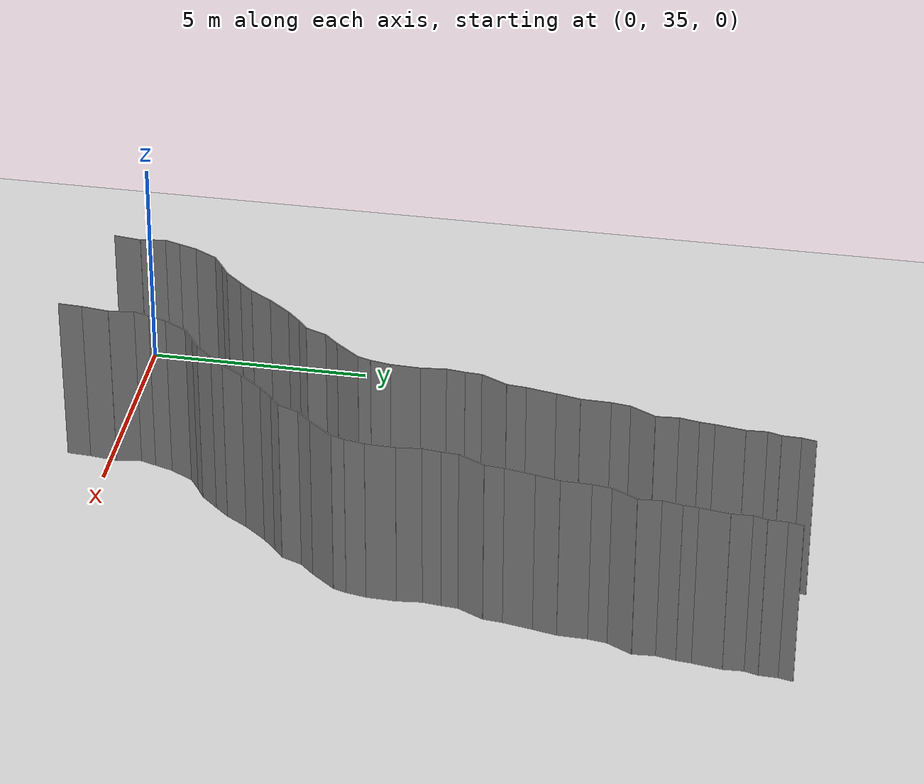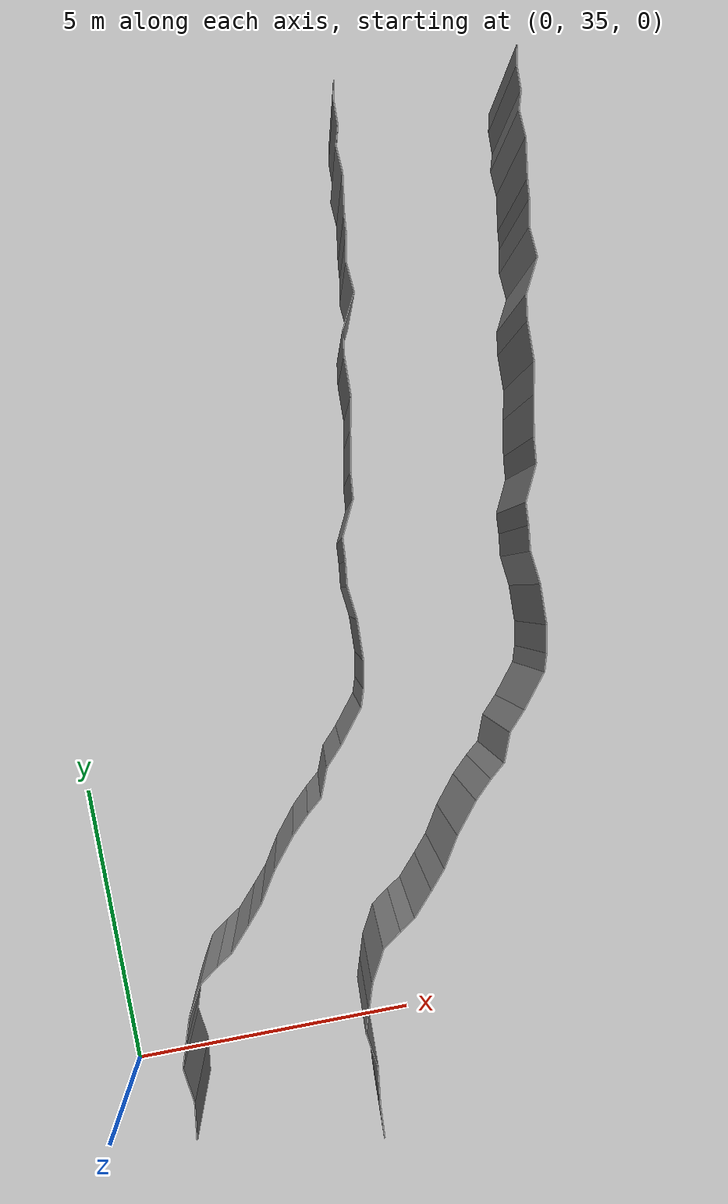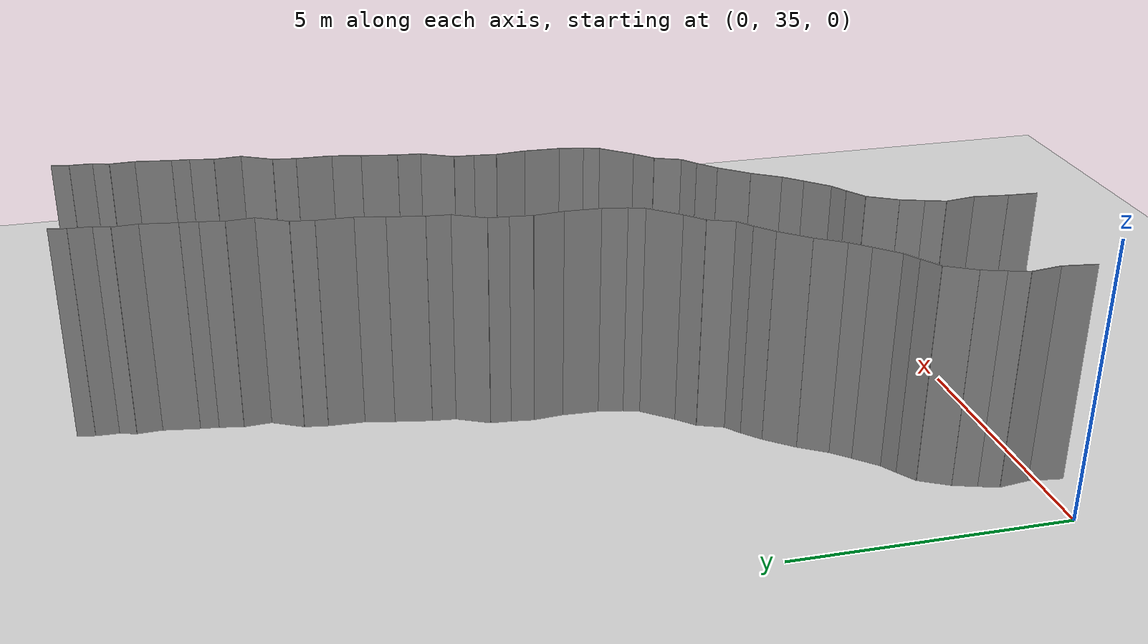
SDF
<sdf version="1.6">
 <world name="default">
  <model name="ground_plane">
   <static>1</static>
   <link name="link">
    <collision name="collision">
     <geometry><plane><normal>0 0 1</normal><size>200 200</size></plane></geometry>
     <surface><friction><ode><mu>100</mu><mu2>50</mu2></ode></friction></surface>
    </collision>
    <visual name="visual">
     <cast_shadows>0</cast_shadows>
     <geometry><plane><normal>0 0 1</normal><size>200 200</size></plane></geometry>
     <material>
      <script><uri>file://media/materials/scripts/gazebo.material</uri><name>Gazebo/Grey</name></script>
     </material>
    </visual>
   </link>
   <pose>0 100 0 0 -0 0</pose>
  </model>
  <model name="wall_149">
   <static>1</static>
   <pose>4.210010592671174 34.243823637815694 2 0 0 -0.05738775027221445</pose>
   <link name="link">
    <collision name="collision"><geometry><box><size>0.02 0.537035599151 4</size></box></geometry></collision>
    <visual name="visual">
     <material>
      <script><name>Gazebo/Grey</name><uri>file://media/materials/scripts/gazebo.material</uri></script>
     </material>
     <geometry><box><size>0.02 0.537035599151 4</size></box></geometry>
    </visual>
   </link>
  </model>
  <model name="wall_150">
   <static>1</static>
   <pose>1.2641803655082342 34.81992617237092 2 0 0 -0.125202783735299</pose>
   <link name="link">
    <collision name="collision"><geometry><box><size>0.02 0.620913838429 4</size></box></geometry></collision>
    <visual name="visual">
     <material>
      <script><name>Gazebo/Grey</name><uri>file://media/materials/scripts/gazebo.material</uri></script>
     </material>
     <geometry><box><size>0.02 0.620913838429 4</size></box></geometry>
    </visual>
   </link>
  </model>
  <model name="wall_151">
   <static>1</static>
   <pose>4.264180365508234 34.81992617237092 2 0 0 -0.125202783735299</pose>
   <link name="link">
    <collision name="collision"><geometry><box><size>0.02 0.620913838429 4</size></box></geometry></collision>
    <visual name="visual">
     <material>
      <script><name>Gazebo/Grey</name><uri>file://media/materials/scripts/gazebo.material</uri></script>
     </material>
     <geometry><box><size>0.02 0.620913838429 4</size></box></geometry>
    </visual>
   </link>
  </model>
  <model name="wall_152">
   <static>1</static>
   <pose>1.262635751878512 35.40809303495665 2 0 0 0.14292258545209252</pose>
   <link name="link">
    <collision name="collision"><geometry><box><size>0.02 0.566051669885 4</size></box></geometry></collision>
    <visual name="visual">
     <material>
      <script><name>Gazebo/Grey</name><uri>file://media/materials/scripts/gazebo.material</uri></script>
     </material>
     <geometry><box><size>0.02 0.566051669885 4</size></box></geometry>
    </visual>
   </link>
  </model>
  <model name="wall_153">
   <static>1</static>
   <pose>4.262635751878512 35.40809303495665 2 0 0 0.14292258545209252</pose>
   <link name="link">
    <collision name="collision"><geometry><box><size>0.02 0.566051669885 4</size></box></geometry></collision>
    <visual name="visual">
     <material>
      <script><name>Gazebo/Grey</name><uri>file://media/materials/scripts/gazebo.material</uri></script>
     </material>
     <geometry><box><size>0.02 0.566051669885 4</size></box></geometry>
    </visual>
   </link>
  </model>
  <model name="wall_154">
   <static>1</static>
   <pose>1.2789226562118792 35.86484187803689 2 0 0 -0.31014107555907894</pose>
   <link name="link">
    <collision name="collision"><geometry><box><size>0.02 0.370913606171 4</size></box></geometry></collision>
    <visual name="visual">
     <material>
      <script><name>Gazebo/Grey</name><uri>file://media/materials/scripts/gazebo.material</uri></script>
     </material>
     <geometry><box><size>0.02 0.370913606171 4</size></box></geometry>
    </visual>
   </link>
  </model>
  <model name="wall_155">
   <static>1</static>
   <pose>4.278922656211879 35.86484187803689 2 0 0 -0.31014107555907894</pose>
   <link name="link">
    <collision name="collision"><geometry><box><size>0.02 0.370913606171 4</size></box></geometry></collision>
    <visual name="visual">
     <material>
      <script><name>Gazebo/Grey</name><uri>file://media/materials/scripts/gazebo.material</uri></script>
     </material>
     <geometry><box><size>0.02 0.370913606171 4</size></box></geometry>
    </visual>
   </link>
  </model>
  <model name="wall_156">
   <static>1</static>
   <pose>1.4024727514980206 36.24623829428925 2 0 0 -0.31597101370831854</pose>
   <link name="link">
    <collision name="collision"><geometry><box><size>0.02 0.430907347532 4</size></box></geometry></collision>
    <visual name="visual">
     <material>
      <script><name>Gazebo/Grey</name><uri>file://media/materials/scripts/gazebo.material</uri></script>
     </material>
     <geometry><box><size>0.02 0.430907347532 4</size></box></geometry>
    </visual>
   </link>
  </model>
  <model name="wall_157">
   <static>1</static>
   <pose>4.402472751498021 36.24623829428925 2 0 0 -0.31597101370831854</pose>
   <link name="link">
    <collision name="collision"><geometry><box><size>0.02 0.430907347532 4</size></box></geometry></collision>
    <visual name="visual">
     <material>
      <script><name>Gazebo/Grey</name><uri>file://media/materials/scripts/gazebo.material</uri></script>
     </material>
     <geometry><box><size>0.02 0.430907347532 4</size></box></geometry>
    </visual>
   </link>
  </model>
  <model name="wall_158">
   <static>1</static>
   <pose>1.6104215736124274 36.70595975618467 2 0 0 -0.5052049833250031</pose>
   <link name="link">
    <collision name="collision"><geometry><box><size>0.02 0.582655702046 4</size></box></geometry></collision>
    <visual name="visual">
     <material>
      <script><name>Gazebo/Grey</name><uri>file://media/materials/scripts/gazebo.material</uri></script>
     </material>
     <geometry><box><size>0.02 0.582655702046 4</size></box></geometry>
    </visual>
   </link>
  </model>
  <model name="wall_159">
   <static>1</static>
   <pose>4.610421573612427 36.70595975618467 2 0 0 -0.5052049833250031</pose>
   <link name="link">
    <collision name="collision"><geometry><box><size>0.02 0.582655702046 4</size></box></geometry></collision>
    <visual name="visual">
     <material>
      <script><name>Gazebo/Grey</name><uri>file://media/materials/scripts/gazebo.material</uri></script>
     </material>
     <geometry><box><size>0.02 0.582655702046 4</size></box></geometry>
    </visual>
   </link>
  </model>
  <model name="wall_160">
   <static>1</static>
   <pose>1.9120183267116684 37.073487573500074 2 0 0 -0.9593374148922097</pose>
   <link name="link">
    <collision name="collision"><geometry><box><size>0.02 0.392270831726 4</size></box></geometry></collision>
    <visual name="visual">
     <material>
      <script><name>Gazebo/Grey</name><uri>file://media/materials/scripts/gazebo.material</uri></script>
     </material>
     <geometry><box><size>0.02 0.392270831726 4</size></box></geometry>
    </visual>
   </link>
  </model>
  <model name="wall_161">
   <static>1</static>
   <pose>4.912018326711668 37.073487573500074 2 0 0 -0.9593374148922097</pose>
   <link name="link">
    <collision name="collision"><geometry><box><size>0.02 0.392270831726 4</size></box></geometry></collision>
    <visual name="visual">
     <material>
      <script><name>Gazebo/Grey</name><uri>file://media/materials/scripts/gazebo.material</uri></script>
     </material>
     <geometry><box><size>0.02 0.392270831726 4</size></box></geometry>
    </visual>
   </link>
  </model>
  <model name="wall_162">
   <static>1</static>
   <pose>2.204729493821966 37.27112759484912 2 0 0 -0.9988375169682683</pose>
   <link name="link">
    <collision name="collision"><geometry><box><size>0.02 0.314240261843 4</size></box></geometry></collision>
    <visual name="visual">
     <material>
      <script><name>Gazebo/Grey</name><uri>file://media/materials/scripts/gazebo.material</uri></script>
     </material>
     <geometry><box><size>0.02 0.314240261843 4</size></box></geometry>
    </visual>
   </link>
  </model>
  <model name="wall_163">
   <static>1</static>
   <pose>5.204729493821966 37.27112759484912 2 0 0 -0.9988375169682683</pose>
   <link name="link">
    <collision name="collision"><geometry><box><size>0.02 0.314240261843 4</size></box></geometry></collision>
    <visual name="visual">
     <material>
      <script><name>Gazebo/Grey</name><uri>file://media/materials/scripts/gazebo.material</uri></script>
     </material>
     <geometry><box><size>0.02 0.314240261843 4</size></box></geometry>
    </visual>
   </link>
  </model>
  <model name="wall_164">
   <static>1</static>
   <pose>2.51212049027761 37.54817160489226 2 0 0 -0.7399044785112537</pose>
   <link name="link">
    <collision name="collision"><geometry><box><size>0.02 0.51994430426 4</size></box></geometry></collision>
    <visual name="visual">
     <material>
      <script><name>Gazebo/Grey</name><uri>file://media/materials/scripts/gazebo.material</uri></script>
     </material>
     <geometry><box><size>0.02 0.51994430426 4</size></box></geometry>
    </visual>
   </link>
  </model>
  <model name="wall_165">
   <static>1</static>
   <pose>5.51212049027761 37.54817160489226 2 0 0 -0.7399044785112537</pose>
   <link name="link">
    <collision name="collision"><geometry><box><size>0.02 0.51994430426 4</size></box></geometry></collision>
    <visual name="visual">
     <material>
      <script><name>Gazebo/Grey</name><uri>file://media/materials/scripts/gazebo.material</uri></script>
     </material>
     <geometry><box><size>0.02 0.51994430426 4</size></box></geometry>
    </visual>
   </link>
  </model>
  <model name="wall_166">
   <static>1</static>
   <pose>2.8228977576963756 37.89475701840699 2 0 0 -0.7196923250993555</pose>
   <link name="link">
    <collision name="collision"><geometry><box><size>0.02 0.411132041815 4</size></box></geometry></collision>
    <visual name="visual">
     <material>
      <script><name>Gazebo/Grey</name><uri>file://media/materials/scripts/gazebo.material</uri></script>
     </material>
     <geometry><box><size>0.02 0.411132041815 4</size></box></geometry>
    </visual>
   </link>
  </model>
  <model name="wall_167">
   <static>1</static>
   <pose>5.822897757696376 37.89475701840699 2 0 0 -0.7196923250993555</pose>
   <link name="link">
    <collision name="collision"><geometry><box><size>0.02 0.411132041815 4</size></box></geometry></collision>
    <visual name="visual">
     <material>
      <script><name>Gazebo/Grey</name><uri>file://media/materials/scripts/gazebo.material</uri></script>
     </material>
     <geometry><box><size>0.02 0.411132041815 4</size></box></geometry>
    </visual>
   </link>
  </model>
  <model name="wall_168">
   <static>1</static>
   <pose>3.1119555091482707 38.2916032382538 2 0 0 -0.5649453577636544</pose>
   <link name="link">
    <collision name="collision"><geometry><box><size>0.02 0.57365306433 4</size></box></geometry></collision>
    <visual name="visual">
     <material>
      <script><name>Gazebo/Grey</name><uri>file://media/materials/scripts/gazebo.material</uri></script>
     </material>
     <geometry><box><size>0.02 0.57365306433 4</size></box></geometry>
    </visual>
   </link>
  </model>
  <model name="wall_169">
   <static>1</static>
   <pose>6.11195550914827 38.2916032382538 2 0 0 -0.5649453577636544</pose>
   <link name="link">
    <collision name="collision"><geometry><box><size>0.02 0.57365306433 4</size></box></geometry></collision>
    <visual name="visual">
     <material>
      <script><name>Gazebo/Grey</name><uri>file://media/materials/scripts/gazebo.material</uri></script>
     </material>
     <geometry><box><size>0.02 0.57365306433 4</size></box></geometry>
    </visual>
   </link>
  </model>
  <model name="wall_170">
   <static>1</static>
   <pose>3.465662119648328 38.78051253246411 2 0 0 -0.6816931735520027</pose>
   <link name="link">
    <collision name="collision"><geometry><box><size>0.02 0.635282102885 4</size></box></geometry></collision>
    <visual name="visual">
     <material>
      <script><name>Gazebo/Grey</name><uri>file://media/materials/scripts/gazebo.material</uri></script>
     </material>
     <geometry><box><size>0.02 0.635282102885 4</size></box></geometry>
    </visual>
   </link>
  </model>
  <model name="wall_171">
   <static>1</static>
   <pose>6.465662119648329 38.78051253246411 2 0 0 -0.6816931735520027</pose>
   <link name="link">
    <collision name="collision"><geometry><box><size>0.02 0.635282102885 4</size></box></geometry></collision>
    <visual name="visual">
     <material>
      <script><name>Gazebo/Grey</name><uri>file://media/materials/scripts/gazebo.material</uri></script>
     </material>
     <geometry><box><size>0.02 0.635282102885 4</size></box></geometry>
    </visual>
   </link>
  </model>
  <model name="wall_172">
   <static>1</static>
   <pose>3.8171336752096607 39.17467314858112 2 0 0 -0.7981572172326835</pose>
   <link name="link">
    <collision name="collision"><geometry><box><size>0.02 0.422648510173 4</size></box></geometry></collision>
    <visual name="visual">
     <material>
      <script><name>Gazebo/Grey</name><uri>file://media/materials/scripts/gazebo.material</uri></script>
     </material>
     <geometry><box><size>0.02 0.422648510173 4</size></box></geometry>
    </visual>
   </link>
  </model>
  <model name="wall_173">
   <static>1</static>
   <pose>6.817133675209661 39.17467314858112 2 0 0 -0.7981572172326835</pose>
   <link name="link">
    <collision name="collision"><geometry><box><size>0.02 0.422648510173 4</size></box></geometry></collision>
    <visual name="visual">
     <material>
      <script><name>Gazebo/Grey</name><uri>file://media/materials/scripts/gazebo.material</uri></script>
     </material>
     <geometry><box><size>0.02 0.422648510173 4</size></box></geometry>
    </visual>
   </link>
  </model>
  <model name="wall_174">
   <static>1</static>
   <pose>4.096001254174671 39.42898334129415 2 0 0 -0.8736887844088234</pose>
   <link name="link">
    <collision name="collision"><geometry><box><size>0.02 0.3327090577 4</size></box></geometry></collision>
    <visual name="visual">
     <material>
      <script><name>Gazebo/Grey</name><uri>file://media/materials/scripts/gazebo.material</uri></script>
     </material>
     <geometry><box><size>0.02 0.3327090577 4</size></box></geometry>
    </visual>
   </link>
  </model>
  <model name="wall_175">
   <static>1</static>
   <pose>7.096001254174671 39.42898334129415 2 0 0 -0.8736887844088234</pose>
   <link name="link">
    <collision name="collision"><geometry><box><size>0.02 0.3327090577 4</size></box></geometry></collision>
    <visual name="visual">
     <material>
      <script><name>Gazebo/Grey</name><uri>file://media/materials/scripts/gazebo.material</uri></script>
     </material>
     <geometry><box><size>0.02 0.3327090577 4</size></box></geometry>
    </visual>
   </link>
  </model>
  <model name="wall_176">
   <static>1</static>
   <pose>4.317324484363362 39.76877882999274 2 0 0 -0.3826528966898051</pose>
   <link name="link">
    <collision name="collision"><geometry><box><size>0.02 0.502319965219 4</size></box></geometry></collision>
    <visual name="visual">
     <material>
      <script><name>Gazebo/Grey</name><uri>file://media/materials/scripts/gazebo.material</uri></script>
     </material>
     <geometry><box><size>0.02 0.502319965219 4</size></box></geometry>
    </visual>
   </link>
  </model>
  <model name="wall_177">
   <static>1</static>
   <pose>7.317324484363362 39.76877882999274 2 0 0 -0.3826528966898051</pose>
   <link name="link">
    <collision name="collision"><geometry><box><size>0.02 0.502319965219 4</size></box></geometry></collision>
    <visual name="visual">
     <material>
      <script><name>Gazebo/Grey</name><uri>file://media/materials/scripts/gazebo.material</uri></script>
     </material>
     <geometry><box><size>0.02 0.502319965219 4</size></box></geometry>
    </visual>
   </link>
  </model>
  <model name="wall_178">
   <static>1</static>
   <pose>4.557893353168188 40.15663964158261 2 0 0 -0.7586344917040667</pose>
   <link name="link">
    <collision name="collision"><geometry><box><size>0.02 0.426758035102 4</size></box></geometry></collision>
    <visual name="visual">
     <material>
      <script><name>Gazebo/Grey</name><uri>file://media/materials/scripts/gazebo.material</uri></script>
     </material>
     <geometry><box><size>0.02 0.426758035102 4</size></box></geometry>
    </visual>
   </link>
  </model>
  <model name="wall_179">
   <static>1</static>
   <pose>7.557893353168188 40.15663964158261 2 0 0 -0.7586344917040667</pose>
   <link name="link">
    <collision name="collision"><geometry><box><size>0.02 0.426758035102 4</size></box></geometry></collision>
    <visual name="visual">
     <material>
      <script><name>Gazebo/Grey</name><uri>file://media/materials/scripts/gazebo.material</uri></script>
     </material>
     <geometry><box><size>0.02 0.426758035102 4</size></box></geometry>
    </visual>
   </link>
  </model>
  <model name="wall_180">
   <static>1</static>
   <pose>4.919871681371253 40.58024884286381 2 0 0 -0.6751792005246824</pose>
   <link name="link">
    <collision name="collision"><geometry><box><size>0.02 0.688561502426 4</size></box></geometry></collision>
    <visual name="visual">
     <material>
      <script><name>Gazebo/Grey</name><uri>file://media/materials/scripts/gazebo.material</uri></script>
     </material>
     <geometry><box><size>0.02 0.688561502426 4</size></box></geometry>
    </visual>
   </link>
  </model>
  <model name="wall_181">
   <static>1</static>
   <pose>7.919871681371253 40.58024884286381 2 0 0 -0.6751792005246824</pose>
   <link name="link">
    <collision name="collision"><geometry><box><size>0.02 0.688561502426 4</size></box></geometry></collision>
    <visual name="visual">
     <material>
      <script><name>Gazebo/Grey</name><uri>file://media/materials/scripts/gazebo.material</uri></script>
     </material>
     <geometry><box><size>0.02 0.688561502426 4</size></box></geometry>
    </visual>
   </link>
  </model>
  <model name="wall_182">
   <static>1</static>
   <pose>5.182089118304529 40.99465891441889 2 0 0 -0.3122910866475531</pose>
   <link name="link">
    <collision name="collision"><geometry><box><size>0.02 0.306139830751 4</size></box></geometry></collision>
    <visual name="visual">
     <material>
      <script><name>Gazebo/Grey</name><uri>file://media/materials/scripts/gazebo.material</uri></script>
     </material>
     <geometry><box><size>0.02 0.306139830751 4</size></box></geometry>
    </visual>
   </link>
  </model>
  <model name="wall_183">
   <static>1</static>
   <pose>8.182089118304528 40.99465891441889 2 0 0 -0.3122910866475531</pose>
   <link name="link">
    <collision name="collision"><geometry><box><size>0.02 0.306139830751 4</size></box></geometry></collision>
    <visual name="visual">
     <material>
      <script><name>Gazebo/Grey</name><uri>file://media/materials/scripts/gazebo.material</uri></script>
     </material>
     <geometry><box><size>0.02 0.306139830751 4</size></box></geometry>
    </visual>
   </link>
  </model>
  <model name="wall_184">
   <static>1</static>
   <pose>5.271682131936035 41.36443669342476 2 0 0 -0.18768729909830956</pose>
   <link name="link">
    <collision name="collision"><geometry><box><size>0.02 0.456235280447 4</size></box></geometry></collision>
    <visual name="visual">
     <material>
      <script><name>Gazebo/Grey</name><uri>file://media/materials/scripts/gazebo.material</uri></script>
     </material>
     <geometry><box><size>0.02 0.456235280447 4</size></box></geometry>
    </visual>
   </link>
  </model>
  <model name="wall_185">
   <static>1</static>
   <pose>8.271682131936036 41.36443669342476 2 0 0 -0.18768729909830956</pose>
   <link name="link">
    <collision name="collision"><geometry><box><size>0.02 0.456235280447 4</size></box></geometry></collision>
    <visual name="visual">
     <material>
      <script><name>Gazebo/Grey</name><uri>file://media/materials/scripts/gazebo.material</uri></script>
     </material>
     <geometry><box><size>0.02 0.456235280447 4</size></box></geometry>
    </visual>
   </link>
  </model>
  <model name="wall_186">
   <static>1</static>
   <pose>5.326150190465213 41.91912138124993 2 0 0 -0.03599523907794824</pose>
   <link name="link">
    <collision name="collision"><geometry><box><size>0.02 0.661574865455 4</size></box></geometry></collision>
    <visual name="visual">
     <material>
      <script><name>Gazebo/Grey</name><uri>file://media/materials/scripts/gazebo.material</uri></script>
     </material>
     <geometry><box><size>0.02 0.661574865455 4</size></box></geometry>
    </visual>
   </link>
  </model>
  <model name="wall_187">
   <static>1</static>
   <pose>8.326150190465214 41.91912138124993 2 0 0 -0.03599523907794824</pose>
   <link name="link">
    <collision name="collision"><geometry><box><size>0.02 0.661574865455 4</size></box></geometry></collision>
    <visual name="visual">
     <material>
      <script><name>Gazebo/Grey</name><uri>file://media/materials/scripts/gazebo.material</uri></script>
     </material>
     <geometry><box><size>0.02 0.661574865455 4</size></box></geometry>
    </visual>
   </link>
  </model>
  <model name="wall_188">
   <static>1</static>
   <pose>5.309976745852067 42.52474533661405 2 0 0 0.10172929157963168</pose>
   <link name="link">
    <collision name="collision"><geometry><box><size>0.02 0.552960371053 4</size></box></geometry></collision>
    <visual name="visual">
     <material>
      <script><name>Gazebo/Grey</name><uri>file://media/materials/scripts/gazebo.material</uri></script>
     </material>
     <geometry><box><size>0.02 0.552960371053 4</size></box></geometry>
    </visual>
   </link>
  </model>
  <model name="wall_189">
   <static>1</static>
   <pose>8.309976745852067 42.52474533661405 2 0 0 0.10172929157963168</pose>
   <link name="link">
    <collision name="collision"><geometry><box><size>0.02 0.552960371053 4</size></box></geometry></collision>
    <visual name="visual">
     <material>
      <script><name>Gazebo/Grey</name><uri>file://media/materials/scripts/gazebo.material</uri></script>
     </material>
     <geometry><box><size>0.02 0.552960371053 4</size></box></geometry>
    </visual>
   </link>
  </model>
  <model name="wall_190">
   <static>1</static>
   <pose>5.307145593405201 43.00612939915721 2 0 0 -0.12175264612954319</pose>
   <link name="link">
    <collision name="collision"><geometry><box><size>0.02 0.415744169154 4</size></box></geometry></collision>
    <visual name="visual">
     <material>
      <script><name>Gazebo/Grey</name><uri>file://media/materials/scripts/gazebo.material</uri></script>
     </material>
     <geometry><box><size>0.02 0.415744169154 4</size></box></geometry>
    </visual>
   </link>
  </model>
  <model name="wall_191">
   <static>1</static>
   <pose>8.3071455934052 43.00612939915721 2 0 0 -0.12175264612954319</pose>
   <link name="link">
    <collision name="collision"><geometry><box><size>0.02 0.415744169154 4</size></box></geometry></collision>
    <visual name="visual">
     <material>
      <script><name>Gazebo/Grey</name><uri>file://media/materials/scripts/gazebo.material</uri></script>
     </material>
     <geometry><box><size>0.02 0.415744169154 4</size></box></geometry>
    </visual>
   </link>
  </model>
  <model name="wall_192">
   <static>1</static>
   <pose>5.345648839208348 43.39750742378925 2 0 0 -0.07151860014012448</pose>
   <link name="link">
    <collision name="collision"><geometry><box><size>0.02 0.371038018978 4</size></box></geometry></collision>
    <visual name="visual">
     <material>
      <script><name>Gazebo/Grey</name><uri>file://media/materials/scripts/gazebo.material</uri></script>
     </material>
     <geometry><box><size>0.02 0.371038018978 4</size></box></geometry>
    </visual>
   </link>
  </model>
  <model name="wall_193">
   <static>1</static>
   <pose>8.345648839208348 43.39750742378925 2 0 0 -0.07151860014012448</pose>
   <link name="link">
    <collision name="collision"><geometry><box><size>0.02 0.371038018978 4</size></box></geometry></collision>
    <visual name="visual">
     <material>
      <script><name>Gazebo/Grey</name><uri>file://media/materials/scripts/gazebo.material</uri></script>
     </material>
     <geometry><box><size>0.02 0.371038018978 4</size></box></geometry>
    </visual>
   </link>
  </model>
  <model name="wall_194">
   <static>1</static>
   <pose>5.500556271629995 43.87217844392005 2 0 0 -0.4548742513336352</pose>
   <link name="link">
    <collision name="collision"><geometry><box><size>0.02 0.644820249833 4</size></box></geometry></collision>
    <visual name="visual">
     <material>
      <script><name>Gazebo/Grey</name><uri>file://media/materials/scripts/gazebo.material</uri></script>
     </material>
     <geometry><box><size>0.02 0.644820249833 4</size></box></geometry>
    </visual>
   </link>
  </model>
  <model name="wall_195">
   <static>1</static>
   <pose>8.500556271629996 43.87217844392005 2 0 0 -0.4548742513336352</pose>
   <link name="link">
    <collision name="collision"><geometry><box><size>0.02 0.644820249833 4</size></box></geometry></collision>
    <visual name="visual">
     <material>
      <script><name>Gazebo/Grey</name><uri>file://media/materials/scripts/gazebo.material</uri></script>
     </material>
     <geometry><box><size>0.02 0.644820249833 4</size></box></geometry>
    </visual>
   </link>
  </model>
  <model name="wall_196">
   <static>1</static>
   <pose>5.664187505387708 44.37618125946521 2 0 0 -0.10217539638114939</pose>
   <link name="link">
    <collision name="collision"><geometry><box><size>0.02 0.431000928795 4</size></box></geometry></collision>
    <visual name="visual">
     <material>
      <script><name>Gazebo/Grey</name><uri>file://media/materials/scripts/gazebo.material</uri></script>
     </material>
     <geometry><box><size>0.02 0.431000928795 4</size></box></geometry>
    </visual>
   </link>
  </model>
  <model name="wall_197">
   <static>1</static>
   <pose>8.664187505387709 44.37618125946521 2 0 0 -0.10217539638114939</pose>
   <link name="link">
    <collision name="collision"><geometry><box><size>0.02 0.431000928795 4</size></box></geometry></collision>
    <visual name="visual">
     <material>
      <script><name>Gazebo/Grey</name><uri>file://media/materials/scripts/gazebo.material</uri></script>
     </material>
     <geometry><box><size>0.02 0.431000928795 4</size></box></geometry>
    </visual>
   </link>
  </model>
  <model name="wall_198">
   <static>1</static>
   <pose>5.748155593838666 44.92122478455166 2 0 0 -0.18531136537896517</pose>
   <link name="link">
    <collision name="collision"><geometry><box><size>0.02 0.672853929335 4</size></box></geometry></collision>
    <visual name="visual">
     <material>
      <script><name>Gazebo/Grey</name><uri>file://media/materials/scripts/gazebo.material</uri></script>
     </material>
     <geometry><box><size>0.02 0.672853929335 4</size></box></geometry>
    </visual>
   </link>
  </model>
  <model name="wall_199">
   <static>1</static>
   <pose>8.748155593838666 44.92122478455166 2 0 0 -0.18531136537896517</pose>
   <link name="link">
    <collision name="collision"><geometry><box><size>0.02 0.672853929335 4</size></box></geometry></collision>
    <visual name="visual">
     <material>
      <script><name>Gazebo/Grey</name><uri>file://media/materials/scripts/gazebo.material</uri></script>
     </material>
     <geometry><box><size>0.02 0.672853929335 4</size></box></geometry>
    </visual>
   </link>
  </model>
  <model name="wall_200">
   <static>1</static>
   <pose>5.865727752859511 45.51719361500114 2 0 0 -0.2065272927815827</pose>
   <link name="link">
    <collision name="collision"><geometry><box><size>0.02 0.542124432829 4</size></box></geometry></collision>
    <visual name="visual">
     <material>
      <script><name>Gazebo/Grey</name><uri>file://media/materials/scripts/gazebo.material</uri></script>
     </material>
     <geometry><box><size>0.02 0.542124432829 4</size></box></geometry>
    </visual>
   </link>
  </model>
  <model name="wall_201">
   <static>1</static>
   <pose>8.865727752859511 45.51719361500114 2 0 0 -0.2065272927815827</pose>
   <link name="link">
    <collision name="collision"><geometry><box><size>0.02 0.542124432829 4</size></box></geometry></collision>
    <visual name="visual">
     <material>
      <script><name>Gazebo/Grey</name><uri>file://media/materials/scripts/gazebo.material</uri></script>
     </material>
     <geometry><box><size>0.02 0.542124432829 4</size></box></geometry>
    </visual>
   </link>
  </model>
  <model name="wall_202">
   <static>1</static>
   <pose>5.929777628988291 46.11176218302102 2 0 0 -0.025703745992176792</pose>
   <link name="link">
    <collision name="collision"><geometry><box><size>0.02 0.658751024852 4</size></box></geometry></collision>
    <visual name="visual">
     <material>
      <script><name>Gazebo/Grey</name><uri>file://media/materials/scripts/gazebo.material</uri></script>
     </material>
     <geometry><box><size>0.02 0.658751024852 4</size></box></geometry>
    </visual>
   </link>
  </model>
  <model name="wall_203">
   <static>1</static>
   <pose>8.92977762898829 46.11176218302102 2 0 0 -0.025703745992176792</pose>
   <link name="link">
    <collision name="collision"><geometry><box><size>0.02 0.658751024852 4</size></box></geometry></collision>
    <visual name="visual">
     <material>
      <script><name>Gazebo/Grey</name><uri>file://media/materials/scripts/gazebo.material</uri></script>
     </material>
     <geometry><box><size>0.02 0.658751024852 4</size></box></geometry>
    </visual>
   </link>
  </model>
  <model name="wall_204">
   <static>1</static>
   <pose>5.9698140981243295 46.65194451539183 2 0 0 -0.1485833127863235</pose>
   <link name="link">
    <collision name="collision"><geometry><box><size>0.02 0.426530845834 4</size></box></geometry></collision>
    <visual name="visual">
     <material>
      <script><name>Gazebo/Grey</name><uri>file://media/materials/scripts/gazebo.material</uri></script>
     </material>
     <geometry><box><size>0.02 0.426530845834 4</size></box></geometry>
    </visual>
   </link>
  </model>
  <model name="wall_205">
   <static>1</static>
   <pose>8.96981409812433 46.65194451539183 2 0 0 -0.1485833127863235</pose>
   <link name="link">
    <collision name="collision"><geometry><box><size>0.02 0.426530845834 4</size></box></geometry></collision>
    <visual name="visual">
     <material>
      <script><name>Gazebo/Grey</name><uri>file://media/materials/scripts/gazebo.material</uri></script>
     </material>
     <geometry><box><size>0.02 0.426530845834 4</size></box></geometry>
    </visual>
   </link>
  </model>
  <model name="wall_206">
   <static>1</static>
   <pose>6.1456854990752925 47.141003312799526 2 0 0 -0.47857283810591367</pose>
   <link name="link">
    <collision name="collision"><geometry><box><size>0.02 0.62669345015 4</size></box></geometry></collision>
    <visual name="visual">
     <material>
      <script><name>Gazebo/Grey</name><uri>file://media/materials/scripts/gazebo.material</uri></script>
     </material>
     <geometry><box><size>0.02 0.62669345015 4</size></box></geometry>
    </visual>
   </link>
  </model>
  <model name="wall_207">
   <static>1</static>
   <pose>9.145685499075292 47.141003312799526 2 0 0 -0.47857283810591367</pose>
   <link name="link">
    <collision name="collision"><geometry><box><size>0.02 0.62669345015 4</size></box></geometry></collision>
    <visual name="visual">
     <material>
      <script><name>Gazebo/Grey</name><uri>file://media/materials/scripts/gazebo.material</uri></script>
     </material>
     <geometry><box><size>0.02 0.62669345015 4</size></box></geometry>
    </visual>
   </link>
  </model>
  <model name="wall_208">
   <static>1</static>
   <pose>6.272636842549277 47.66868999303145 2 0 0 0.06941062453865798</pose>
   <link name="link">
    <collision name="collision"><geometry><box><size>0.02 0.500291683777 4</size></box></geometry></collision>
    <visual name="visual">
     <material>
      <script><name>Gazebo/Grey</name><uri>file://media/materials/scripts/gazebo.material</uri></script>
     </material>
     <geometry><box><size>0.02 0.500291683777 4</size></box></geometry>
    </visual>
   </link>
  </model>
  <model name="wall_209">
   <static>1</static>
   <pose>9.272636842549277 47.66868999303145 2 0 0 0.06941062453865798</pose>
   <link name="link">
    <collision name="collision"><geometry><box><size>0.02 0.500291683777 4</size></box></geometry></collision>
    <visual name="visual">
     <material>
      <script><name>Gazebo/Grey</name><uri>file://media/materials/scripts/gazebo.material</uri></script>
     </material>
     <geometry><box><size>0.02 0.500291683777 4</size></box></geometry>
    </visual>
   </link>
  </model>
  <model name="wall_210">
   <static>1</static>
   <pose>6.297793614492714 48.136457186008144 2 0 0 -0.1923713377637997</pose>
   <link name="link">
    <collision name="collision"><geometry><box><size>0.02 0.44464955154 4</size></box></geometry></collision>
    <visual name="visual">
     <material>
      <script><name>Gazebo/Grey</name><uri>file://media/materials/scripts/gazebo.material</uri></script>
     </material>
     <geometry><box><size>0.02 0.44464955154 4</size></box></geometry>
    </visual>
   </link>
  </model>
  <model name="wall_211">
   <static>1</static>
   <pose>9.297793614492715 48.136457186008144 2 0 0 -0.1923713377637997</pose>
   <link name="link">
    <collision name="collision"><geometry><box><size>0.02 0.44464955154 4</size></box></geometry></collision>
    <visual name="visual">
     <material>
      <script><name>Gazebo/Grey</name><uri>file://media/materials/scripts/gazebo.material</uri></script>
     </material>
     <geometry><box><size>0.02 0.44464955154 4</size></box></geometry>
    </visual>
   </link>
  </model>
  <model name="wall_212">
   <static>1</static>
   <pose>6.356541335905017 48.518524572846765 2 0 0 -0.09880890373040177</pose>
   <link name="link">
    <collision name="collision"><geometry><box><size>0.02 0.3292935659 4</size></box></geometry></collision>
    <visual name="visual">
     <material>
      <script><name>Gazebo/Grey</name><uri>file://media/materials/scripts/gazebo.material</uri></script>
     </material>
     <geometry><box><size>0.02 0.3292935659 4</size></box></geometry>
    </visual>
   </link>
  </model>
  <model name="wall_213">
   <static>1</static>
   <pose>9.356541335905018 48.518524572846765 2 0 0 -0.09880890373040177</pose>
   <link name="link">
    <collision name="collision"><geometry><box><size>0.02 0.3292935659 4</size></box></geometry></collision>
    <visual name="visual">
     <material>
      <script><name>Gazebo/Grey</name><uri>file://media/materials/scripts/gazebo.material</uri></script>
     </material>
     <geometry><box><size>0.02 0.3292935659 4</size></box></geometry>
    </visual>
   </link>
  </model>
  <model name="wall_214">
   <static>1</static>
   <pose>6.422675210706913 49.011927062814415 2 0 0 -0.15024866841915105</pose>
   <link name="link">
    <collision name="collision"><geometry><box><size>0.02 0.666627891269 4</size></box></geometry></collision>
    <visual name="visual">
     <material>
      <script><name>Gazebo/Grey</name><uri>file://media/materials/scripts/gazebo.material</uri></script>
     </material>
     <geometry><box><size>0.02 0.666627891269 4</size></box></geometry>
    </visual>
   </link>
  </model>
  <model name="wall_215">
   <static>1</static>
   <pose>9.422675210706913 49.011927062814415 2 0 0 -0.15024866841915105</pose>
   <link name="link">
    <collision name="collision"><geometry><box><size>0.02 0.666627891269 4</size></box></geometry></collision>
    <visual name="visual">
     <material>
      <script><name>Gazebo/Grey</name><uri>file://media/materials/scripts/gazebo.material</uri></script>
     </material>
     <geometry><box><size>0.02 0.666627891269 4</size></box></geometry>
    </visual>
   </link>
  </model>
  <model name="wall_216">
   <static>1</static>
   <pose>6.461143318685762 49.56779761620371 2 0 0 0.05043472047640525</pose>
   <link name="link">
    <collision name="collision"><geometry><box><size>0.02 0.453199791937 4</size></box></geometry></collision>
    <visual name="visual">
     <material>
      <script><name>Gazebo/Grey</name><uri>file://media/materials/scripts/gazebo.material</uri></script>
     </material>
     <geometry><box><size>0.02 0.453199791937 4</size></box></geometry>
    </visual>
   </link>
  </model>
  <model name="wall_217">
   <static>1</static>
   <pose>9.461143318685762 49.56779761620371 2 0 0 0.05043472047640525</pose>
   <link name="link">
    <collision name="collision"><geometry><box><size>0.02 0.453199791937 4</size></box></geometry></collision>
    <visual name="visual">
     <material>
      <script><name>Gazebo/Grey</name><uri>file://media/materials/scripts/gazebo.material</uri></script>
     </material>
     <geometry><box><size>0.02 0.453199791937 4</size></box></geometry>
    </visual>
   </link>
  </model>
  <model name="wall_218">
   <static>1</static>
   <pose>6.494930015770841 49.94428554739477 2 0 0 -0.29241871264935043</pose>
   <link name="link">
    <collision name="collision"><geometry><box><size>0.02 0.313667712603 4</size></box></geometry></collision>
    <visual name="visual">
     <material>
      <script><name>Gazebo/Grey</name><uri>file://media/materials/scripts/gazebo.material</uri></script>
     </material>
     <geometry><box><size>0.02 0.313667712603 4</size></box></geometry>
    </visual>
   </link>
  </model>
  <model name="wall_219">
   <static>1</static>
   <pose>9.49493001577084 49.94428554739477 2 0 0 -0.29241871264935043</pose>
   <link name="link">
    <collision name="collision"><geometry><box><size>0.02 0.313667712603 4</size></box></geometry></collision>
    <visual name="visual">
     <material>
      <script><name>Gazebo/Grey</name><uri>file://media/materials/scripts/gazebo.material</uri></script>
     </material>
     <geometry><box><size>0.02 0.313667712603 4</size></box></geometry>
    </visual>
   </link>
  </model>
  <model name="wall_220">
   <static>1</static>
   <pose>6.545800667319146 50.3029504466642 2 0 0 -0.02714250519449929</pose>
   <link name="link">
    <collision name="collision"><geometry><box><size>0.02 0.417131100997 4</size></box></geometry></collision>
    <visual name="visual">
     <material>
      <script><name>Gazebo/Grey</name><uri>file://media/materials/scripts/gazebo.material</uri></script>
     </material>
     <geometry><box><size>0.02 0.417131100997 4</size></box></geometry>
    </visual>
   </link>
  </model>
  <model name="wall_221">
   <static>1</static>
   <pose>9.545800667319146 50.3029504466642 2 0 0 -0.02714250519449929</pose>
   <link name="link">
    <collision name="collision"><geometry><box><size>0.02 0.417131100997 4</size></box></geometry></collision>
    <visual name="visual">
     <material>
      <script><name>Gazebo/Grey</name><uri>file://media/materials/scripts/gazebo.material</uri></script>
     </material>
     <geometry><box><size>0.02 0.417131100997 4</size></box></geometry>
    </visual>
   </link>
  </model>
  <model name="wall_222">
   <static>1</static>
   <pose>6.585450383976458 50.67107171507038 2 0 0 -0.20978996773771752</pose>
   <link name="link">
    <collision name="collision"><geometry><box><size>0.02 0.326421987564 4</size></box></geometry></collision>
    <visual name="visual">
     <material>
      <script><name>Gazebo/Grey</name><uri>file://media/materials/scripts/gazebo.material</uri></script>
     </material>
     <geometry><box><size>0.02 0.326421987564 4</size></box></geometry>
    </visual>
   </link>
  </model>
  <model name="wall_223">
   <static>1</static>
   <pose>9.585450383976458 50.67107171507038 2 0 0 -0.20978996773771752</pose>
   <link name="link">
    <collision name="collision"><geometry><box><size>0.02 0.326421987564 4</size></box></geometry></collision>
    <visual name="visual">
     <material>
      <script><name>Gazebo/Grey</name><uri>file://media/materials/scripts/gazebo.material</uri></script>
     </material>
     <geometry><box><size>0.02 0.326421987564 4</size></box></geometry>
    </visual>
   </link>
  </model>
 </world>
</sdf>
